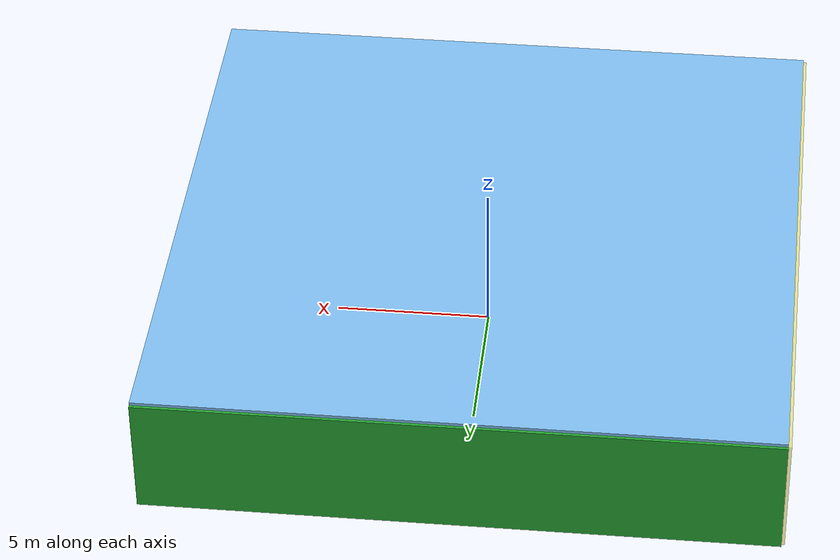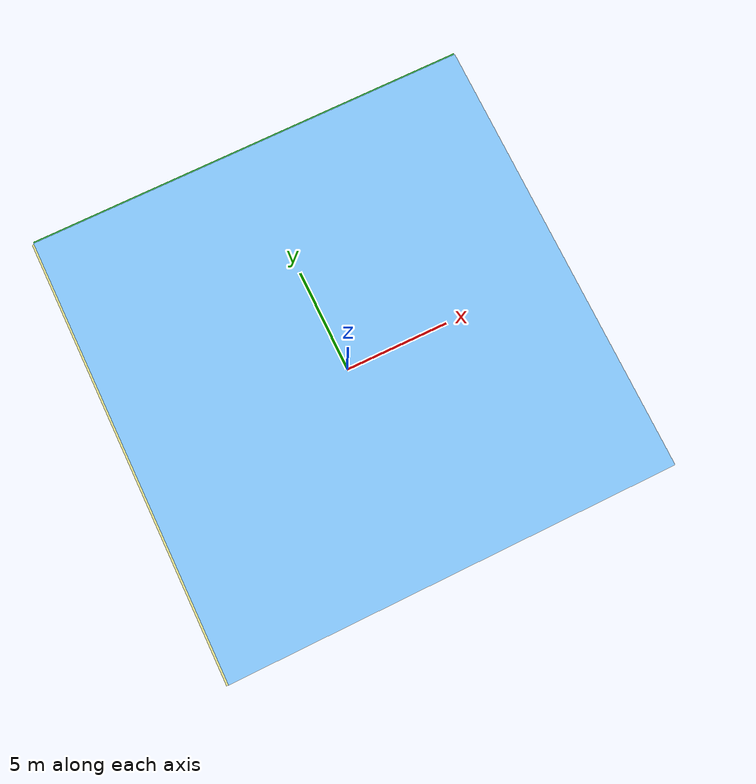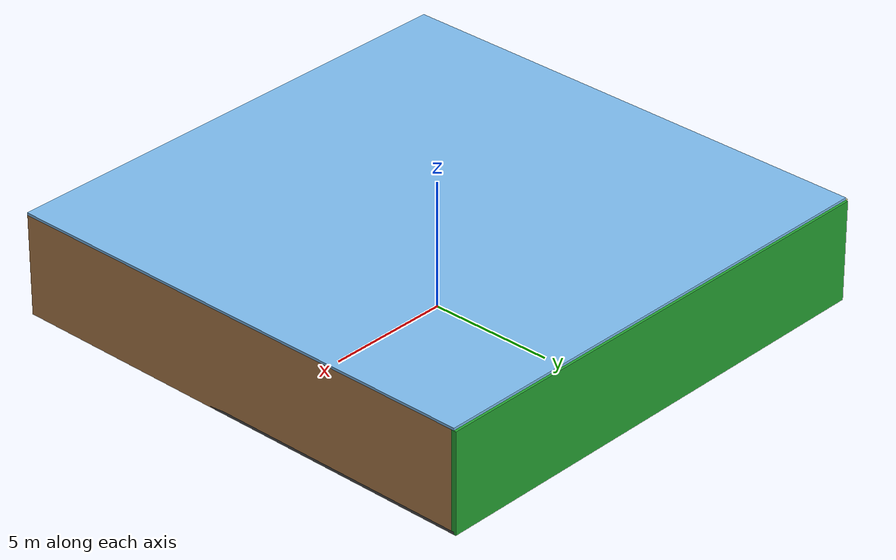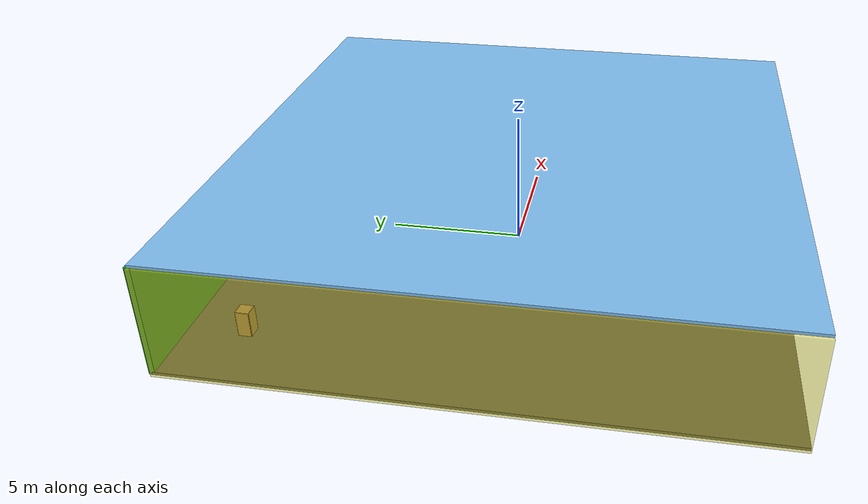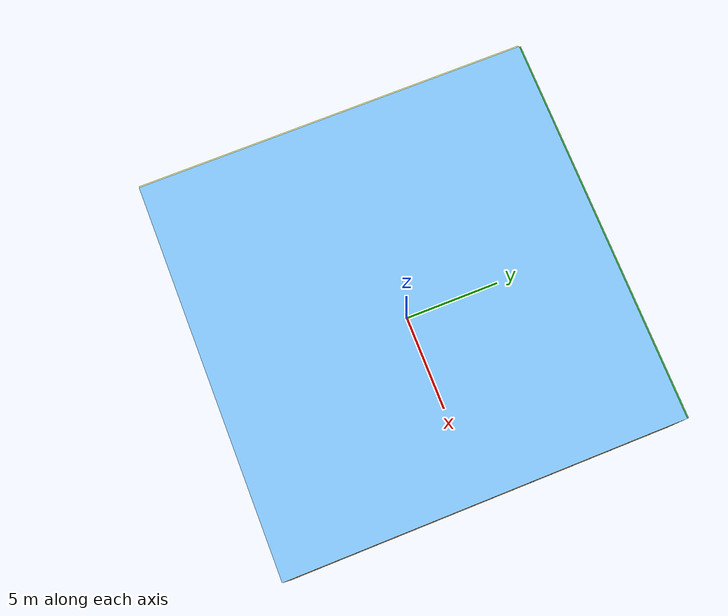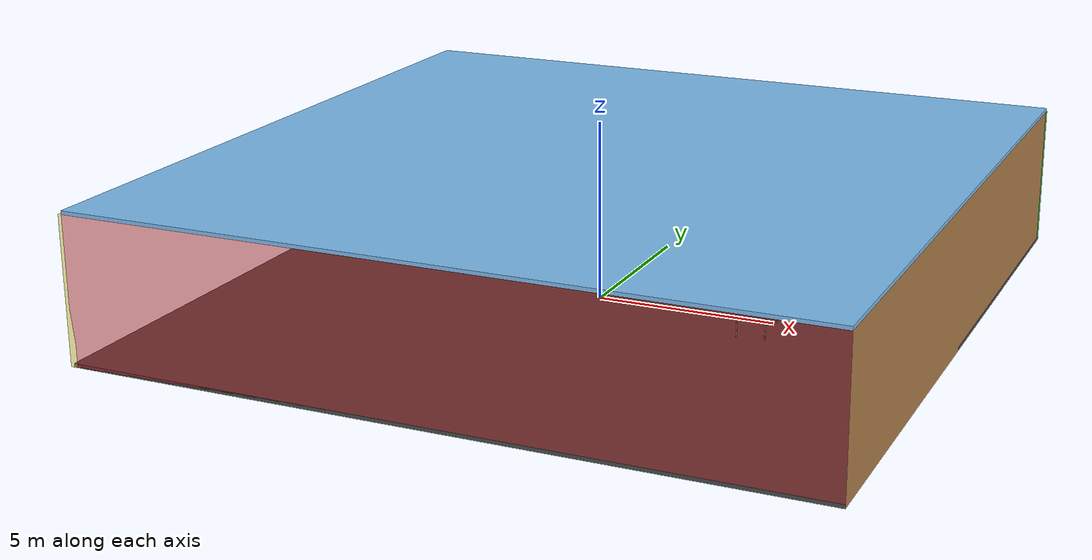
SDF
<sdf version="1.4">
 <world name="default">
  <physics type="ode">
   <max_step_size>0.001</max_step_size>
   <real_time_factor>1</real_time_factor>
   <real_time_update_rate>1000</real_time_update_rate>
   <gravity>0 0 -9.8</gravity>
  </physics>
  <scene><ambient>0.4 0.4 0.4 1</ambient><background>0.7 0.7 0.7 1</background><shadows>1</shadows></scene>
  <model name="Surrounding">
   <static>1</static>
   <link name="Ceiling">
    <collision name="Ceiling_Collision"><geometry><box><size>20 20 0.1</size></box></geometry></collision>
    <visual name="Ceiling_Visual">
     <geometry><box><size>20 20 0.1</size></box></geometry>
     <material>
      <script><uri>file://media/materials/scripts/gazebo.material</uri><name>Gazebo/SkyBlue</name></script>
     </material>
    </visual>
    <pose>0 0 4.05 0 0 0</pose>
   </link>
   <link name="Wall_South">
    <collision name="Wall_South_Collision">
     <geometry><box><size>20 0 4</size></box></geometry>
     <pose>0 0 2 0 -0 0</pose>
    </collision>
    <visual name="Wall_South_Visual">
     <pose>0 0 2 0 -0 0</pose>
     <geometry><box><size>20 0 4</size></box></geometry>
     <material>
      <script><uri>file://media/materials/scripts/gazebo.material</uri><name>Gazebo/RedTransparent</name></script>
     </material>
    </visual>
    <velocity_decay><linear>0</linear><angular>0</angular></velocity_decay>
    <pose>0 -10 0 0 -0 0</pose>
   </link>
   <link name="Wall_East">
    <collision name="Wall_21_Collision">
     <geometry><box><size>20 0 4</size></box></geometry>
     <pose>0 0 2 0 -0 0</pose>
    </collision>
    <visual name="Wall_21_Visual">
     <pose>0 0 2 0 -0 0</pose>
     <geometry><box><size>20 0 4</size></box></geometry>
     <material>
      <script><uri>file://media/materials/scripts/gazebo.material</uri><name>Gazebo/WoodFloor</name></script>
     </material>
    </visual>
    <velocity_decay><linear>0</linear><angular>0</angular></velocity_decay>
    <pose>10 0 0 0 -0 1.5708</pose>
   </link>
   <link name="Wall_North">
    <collision name="Wall_22_Collision">
     <geometry><box><size>20 0.2 4</size></box></geometry>
     <pose>0 0 2 0 -0 0</pose>
    </collision>
    <visual name="Wall_22_Visual">
     <pose>0 0 2 0 -0 0</pose>
     <geometry><box><size>20 0.2 4</size></box></geometry>
     <material>
      <script><uri>file://media/materials/scripts/gazebo.material</uri><name>Gazebo/Green</name></script>
     </material>
    </visual>
    <velocity_decay><linear>0</linear><angular>0</angular></velocity_decay>
    <pose>0 10 0 0 -0 0</pose>
   </link>
   <link name="Wall_West">
    <collision name="Wall_23_Collision">
     <geometry><box><size>20 0.2 4</size></box></geometry>
     <pose>0 0 2 0 -0 0</pose>
    </collision>
    <visual name="Wall_23_Visual">
     <pose>0 0 2 0 -0 0</pose>
     <geometry><box><size>20 0.2 4</size></box></geometry>
     <material>
      <script>
       <uri>file://media/materials/scripts/gazebo.material</uri>
       <name>Gazebo/YellowTransparent</name>
      </script>
     </material>
    </visual>
    <velocity_decay><linear>0</linear><angular>0</angular></velocity_decay>
    <pose>-10 0 0 0 0 -1.5708</pose>
   </link>
   <link name="Ground_link">
    <collision name="collision">
     <pose>0 0 .05 0 -0 0</pose>
     <geometry><box><size>20 20 0.1</size></box></geometry>
    </collision>
    <visual name="visual">
     <pose>0 0 .05 0 -0 0</pose>
     <geometry><box><size>20 20 0.1</size></box></geometry>
     <material>
      <script><uri>file://media/materials/scripts/gazebo.material</uri><name>Gazebo/Road</name></script>
     </material>
    </visual>
   </link>
   <static>1</static>
  </model>
  <spherical_coordinates>
   <surface_model>EARTH_WGS84</surface_model>
   <latitude_deg>0</latitude_deg>
   <longitude_deg>0</longitude_deg>
   <elevation>0</elevation>
   <heading_deg>0</heading_deg>
  </spherical_coordinates>
  <light name="lightball_0" type="diffuse">
   <diffuse>0.8 0.8 0.8 1</diffuse>
   <specular>0.2 0.2 0.2 1</specular>
   <attenuation>
    <range>100</range>
    <constant>0.7</constant>
    <linear>0.01</linear>
    <quadratic>0.001</quadratic>
   </attenuation>
   <direction>-0.5 0.1 -0.9</direction>
   <pose>-3.09652471251 6.91583038914 1.94660577697 0 0 0</pose>
  </light>
  <light name="lightball_1" type="diffuse">
   <diffuse>0.8 0.8 0.8 1</diffuse>
   <specular>0.2 0.2 0.2 1</specular>
   <attenuation>
    <range>100</range>
    <constant>0.7</constant>
    <linear>0.01</linear>
    <quadratic>0.001</quadratic>
   </attenuation>
   <direction>-0.5 0.1 -0.9</direction>
   <pose>5.53809364166 9.94914998915 2.74197884009 0 0 0</pose>
  </light>
  <light name="lightball_2" type="diffuse">
   <diffuse>0.8 0.8 0.8 1</diffuse>
   <specular>0.2 0.2 0.2 1</specular>
   <attenuation>
    <range>100</range>
    <constant>0.7</constant>
    <linear>0.01</linear>
    <quadratic>0.001</quadratic>
   </attenuation>
   <direction>-0.5 0.1 -0.9</direction>
   <pose>0.96874127542 -3.00382053939 2.1617108265 0 0 0</pose>
  </light>
  <include><uri>model://cabinet</uri><pose>-7.5738577689 7.86727345564 0 0 0 3.12621874576</pose></include>
  <include>
   <uri>model://textured_shapes</uri>
   <pose>-0.764936225385 5.10873184973 0 0 0 0.361352653868</pose>
  </include>
  <include><uri>model://table</uri><pose>4.84201612186 -0.868776295911 0 0 0 1.66801114365</pose></include>
  <include><uri>model://cabinet</uri><pose>3.75428923358 0.79973187498 0 0 0 0.786342459656</pose></include>
  <include><uri>model://table</uri><pose>8.02355070722 2.06169522132 0 0 0 0.920020286746</pose></include>
 </world>
</sdf>

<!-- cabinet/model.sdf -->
<sdf version="1.5">
  <model name="cabinet">
    <static>true</static>
    <link name="cabinet_bottom_plate">
      <inertial>
        <pose>0 0 -1 0 0 0</pose>
        <inertia>
          <ixx>2.050000</ixx>
          <ixy>0</ixy>
          <ixz>0</ixz>
          <iyy>2.050000</iyy>
          <iyz>0</iyz>
          <izz>2.050000</izz>
        </inertia>
        <mass>25.000000</mass>
      </inertial>
      <collision name="cabinet_bottom_plate_geom">
        <pose>0 0 0.010000 0 0 0</pose>
        <geometry>
          <box>
            <size>0.450000 0.450000 0.020000</size>
          </box>
        </geometry>
      </collision>
      <visual name="cabinet_bottom_plate_geom_visual">
        <pose>0 0 0.010000 0 0 0</pose>
        <geometry>
          <box>
            <size>0.450000 0.450000 0.020000</size>
          </box>
        </geometry>
        <material>
          <script>
            <uri>model://media/materials/scripts/gazebo.material</uri>
            <name>Gazebo/Wood</name>
          </script>
        </material>
      </visual>
      <collision name="cabinet_bottom_plate_geom_cabinet_back_plate">
        <pose>0.235000 0 0.510000 0 0 0</pose>
        <geometry>
          <box>
            <size>0.020000 0.450000 1.020000</size>
          </box>
        </geometry>
      </collision>
      <visual name="cabinet_bottom_plate_geom_cabinet_back_plate_visual">
        <pose>0.235000 0 0.510000 0 0 0</pose>
        <geometry>
          <box>
            <size>0.020000 0.450000 1.020000</size>
          </box>
        </geometry>
        <material>
          <script>
            <uri>model://media/materials/scripts/gazebo.material</uri>
            <name>Gazebo/Wood</name>
          </script>
        </material>
      </visual>
      <collision name="cabinet_bottom_plate_geom_cabinet_left_plate">
        <pose>0 0.235000 0.510000 0 0 0</pose>
        <geometry>
          <box>
            <size>0.450000 0.020000 1.020000</size>
          </box>
        </geometry>
      </collision>
      <visual name="cabinet_bottom_plate_geom_cabinet_left_plate_visual">
        <pose>0 0.235000 0.510000 0 0 0</pose>
        <geometry>
          <box>
            <size>0.450000 0.020000 1.020000</size>
          </box>
        </geometry>
        <material>
          <script>
            <uri>model://media/materials/scripts/gazebo.material</uri>
            <name>Gazebo/Wood</name>
          </script>
        </material>
      </visual>
      <collision name="cabinet_bottom_plate_geom_cabinet_middle_plate">
        <pose>0 0 0.510000 0 0 0</pose>
        <geometry>
          <box>
            <size>0.450000 0.450000 0.020000</size>
          </box>
        </geometry>
      </collision>
      <visual name="cabinet_bottom_plate_geom_cabinet_middle_plate_visual">
        <pose>0 0 0.510000 0 0 0</pose>
        <geometry>
          <box>
            <size>0.450000 0.450000 0.020000</size>
          </box>
        </geometry>
        <material>
          <script>
            <uri>model://media/materials/scripts/gazebo.material</uri>
            <name>Gazebo/Wood</name>
          </script>
        </material>
      </visual>
      <collision name="cabinet_bottom_plate_geom_cabinet_right_plate">
        <pose>0 -0.235000 0.510000 0 0 0</pose>
        <geometry>
          <box>
            <size>0.450000 0.020000 1.020000</size>
          </box>
        </geometry>
      </collision>
      <visual name="cabinet_bottom_plate_geom_cabinet_right_plate_visual">
        <pose>0 -0.235000 0.510000 0 0 0</pose>
        <geometry>
          <box>
            <size>0.450000 0.020000 1.020000</size>
          </box>
        </geometry>
        <material>
          <script>
            <uri>model://media/materials/scripts/gazebo.material</uri>
            <name>Gazebo/Wood</name>
          </script>
        </material>
      </visual>
      <collision name="cabinet_bottom_plate_geom_cabinet_top_plate">
        <pose>0 0 1.010000 0 0 0</pose>
        <geometry>
          <box>
            <size>0.450000 0.450000 0.020000</size>
          </box>
        </geometry>
      </collision>
      <visual name="cabinet_bottom_plate_geom_cabinet_top_plate_visual">
        <pose>0 0 1.010000 0 0 0</pose>
        <geometry>
          <box>
            <size>0.450000 0.450000 0.020000</size>
          </box>
        </geometry>
        <material>
          <script>
            <uri>model://media/materials/scripts/gazebo.material</uri>
            <name>Gazebo/Wood</name>
          </script>
        </material>
      </visual>
    </link>
  </model>
</sdf>

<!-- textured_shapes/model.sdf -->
<sdf version="1.6">
  <model name="textured_shapes">
    <pose>0 0 0.5 0 0 0</pose>
    <link name="box">
      <pose>0 -1.5 0 0 0 0</pose>
      <collision name="collision">
        <geometry>
          <box>
            <size>1 1 1</size>
          </box>
        </geometry>
      </collision>
      <visual name="visual">
        <geometry>
          <box>
            <size>1 1 1</size>
          </box>
        </geometry>
        <material>
          <script>
            <uri>model://../model_source/models/textured_shapes/materials/scripts</uri>
            <uri>model://../model_source/models/textured_shapes/materials/textures</uri>
            <name>TexturedShape/Squares</name>
          </script>
        </material>
      </visual>
    </link>
    <link name="sphere">
      <collision name="collision">
        <geometry>
          <sphere>
            <radius>0.5</radius>
          </sphere>
        </geometry>
      </collision>
      <visual name="visual">
        <geometry>
          <sphere>
            <radius>0.5</radius>
          </sphere>
        </geometry>
        <material>
          <script>
            <uri>model://../model_source/models/textured_shapes/materials/scripts</uri>
            <uri>model://../model_source/models/textured_shapes/materials/textures</uri>
            <name>TexturedShape/Squares</name>
          </script>
        </material>
      </visual>
    </link>
    <link name="cylinder">
      <pose>0 1.5 0 0 0 0</pose>
      <collision name="collision">
        <geometry>
          <cylinder>
            <radius>0.5</radius>
            <length>1</length>
          </cylinder>
        </geometry>
      </collision>
      <visual name="visual">
        <geometry>
          <cylinder>
            <radius>0.5</radius>
            <length>1</length>
          </cylinder>
        </geometry>
        <material>
          <script>
            <uri>model://../model_source/models/textured_shapes/materials/scripts</uri>
            <uri>model://../model_source/models/textured_shapes/materials/textures</uri>
            <name>TexturedShape/Squares</name>
          </script>
        </material>
      </visual>
    </link>
  </model>
</sdf>

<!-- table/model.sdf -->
<sdf version="1.5">
  <model name="table">
    <static>true</static>
    <link name="link">
      <collision name="surface">
        <pose>0 0 1.0 0 0 0</pose>
        <geometry>
          <box>
            <size>1.5 0.8 0.03</size>
          </box>
        </geometry>
        <surface>
          <friction>
            <ode>
              <mu>0.6</mu>
              <mu2>0.6</mu2>
            </ode>
          </friction>
        </surface>
      </collision>
      <visual name="visual1">
        <pose>0 0 1.0 0 0 0</pose>
        <geometry>
          <box>
            <size>1.5 0.8 0.03</size>
          </box>
        </geometry>
        <material>
          <script>
            <uri>model://media/materials/scripts/gazebo.material</uri>
            <name>Gazebo/Wood</name>
          </script>
        </material>
      </visual>
      <collision name="front_left_leg">
        <pose>0.68 0.38 0.5 0 0 0</pose>
        <geometry>
          <cylinder>
            <radius>0.02</radius>
            <length>1.0</length>
          </cylinder>
        </geometry>
      </collision>
      <visual name="front_left_leg">
        <pose>0.68 0.38 0.5 0 0 0</pose>
        <geometry>
          <cylinder>
            <radius>0.02</radius>
            <length>1.0</length>
          </cylinder>
        </geometry>
        <material>
          <script>
            <uri>model://media/materials/scripts/gazebo.material</uri>
            <name>Gazebo/Grey</name>
          </script>
        </material>
      </visual>
      <collision name="front_right_leg">
        <pose>0.68 -0.38 0.5 0 0 0</pose>
        <geometry>
          <cylinder>
            <radius>0.02</radius>
            <length>1.0</length>
          </cylinder>
        </geometry>
      </collision>
      <visual name="front_right_leg">
        <pose>0.68 -0.38 0.5 0 0 0</pose>
        <geometry>
          <cylinder>
            <radius>0.02</radius>
            <length>1.0</length>
          </cylinder>
        </geometry>
        <material>
          <script>
            <uri>model://media/materials/scripts/gazebo.material</uri>
            <name>Gazebo/Grey</name>
          </script>
        </material>
      </visual>
      <collision name="back_right_leg">
        <pose>-0.68 -0.38 0.5 0 0 0</pose>
        <geometry>
          <cylinder>
            <radius>0.02</radius>
            <length>1.0</length>
          </cylinder>
        </geometry>
      </collision>
      <visual name="back_right_leg">
        <pose>-0.68 -0.38 0.5 0 0 0</pose>
        <geometry>
          <cylinder>
            <radius>0.02</radius>
            <length>1.0</length>
          </cylinder>
        </geometry>
        <material>
          <script>
            <uri>model://media/materials/scripts/gazebo.material</uri>
            <name>Gazebo/Grey</name>
          </script>
        </material>
      </visual>
      <collision name="back_left_leg">
        <pose>-0.68 0.38 0.5 0 0 0</pose>
        <geometry>
          <cylinder>
            <radius>0.02</radius>
            <length>1.0</length>
          </cylinder>
        </geometry>
      </collision>
      <visual name="back_left_leg">
        <pose>-0.68 0.38 0.5 0 0 0</pose>
        <geometry>
          <cylinder>
            <radius>0.02</radius>
            <length>1.0</length>
          </cylinder>
        </geometry>
        <material>
          <script>
            <uri>model://media/materials/scripts/gazebo.material</uri>
            <name>Gazebo/Grey</name>
          </script>
        </material>
      </visual>
    </link>
  </model>
</sdf>
